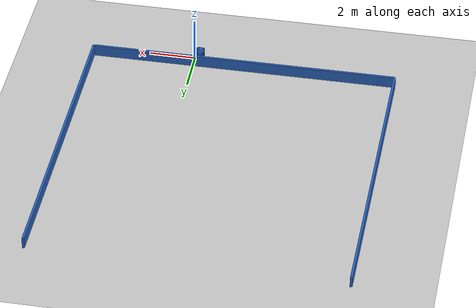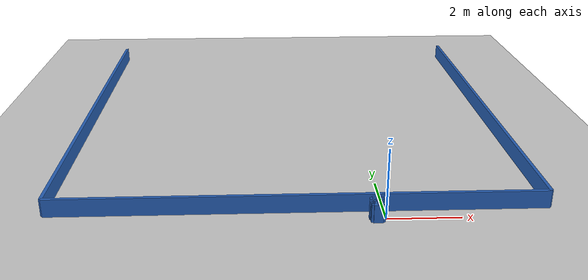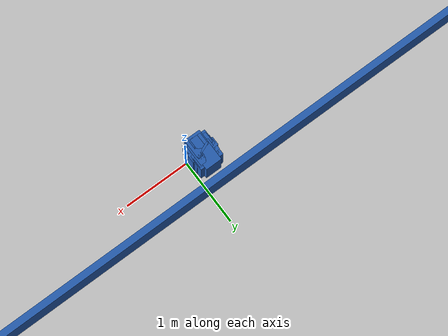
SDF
<?xml version="1.0" ?>
    <sdf version="1.5">
      <world name="default">
        <!-- A global light source -->
        <include>
          <uri>model://sun</uri>
        </include>
        <!-- A ground plane -->
        <include>
          <uri>model://ground_plane</uri>
        </include>

    <model name='libopen_space_final_T2B_123_20'>
      <static>1</static>
      <pose frame=''>-0.225000 0.075000 0.000000 0.000000 0.000000 0.000000</pose>
      <link name='link'>
        <inertial>
          <mass>1</mass>
          <inertia>
            <ixx>0.145833</ixx>
            <ixy>0</ixy>
            <ixz>0</ixz>
            <iyy>0.145833</iyy>
            <iyz>0</iyz>
            <izz>0.125</izz>
          </inertia>
        </inertial>
        <collision name='collision'>
          <geometry>
            <box>
              <size>0.42 0.13 1</size>
            </box>
          </geometry>
          <max_contacts>10</max_contacts>
          <surface>
            <contact>
              <ode/>
            </contact>
            <bounce/>
            <friction>
              <torsional>
                <ode/>
              </torsional>
              <ode/>
            </friction>
          </surface>
        </collision>
        <visual name='visual'>
          <geometry>
            <box>
              <size>0.42 0.13 1</size>
            </box>
          </geometry>
	    <material>
              <ambient>0.152000 0.379000 0.720000 1</ambient>
	      <diffuse>0.152000 0.379000 0.720000 1</diffuse>
          </material>
          <material>
            <script>
              <name>Gazebo/Grey</name>
              <uri>file://media/materials/scripts/gazebo.material</uri>
            </script>
          </material>
        </visual>
        <self_collide>0</self_collide>
        <kinematic>0</kinematic>
        <gravity>1</gravity>
      </link>
      <plugin name='libopen_space_final_T2B_123_20' filename='libopen_space_final_T2B_123_20.so'/>
    </model>

    <model name='libopen_space_final_T2B_51_63'>
      <static>1</static>
      <pose frame=''>-0.225000 0.075000 0.000000 0.000000 0.000000 0.000000</pose>
      <link name='link'>
        <inertial>
          <mass>1</mass>
          <inertia>
            <ixx>0.145833</ixx>
            <ixy>0</ixy>
            <ixz>0</ixz>
            <iyy>0.145833</iyy>
            <iyz>0</iyz>
            <izz>0.125</izz>
          </inertia>
        </inertial>
        <collision name='collision'>
          <geometry>
            <box>
              <size>0.25 0.50 1</size>
            </box>
          </geometry>
          <max_contacts>10</max_contacts>
          <surface>
            <contact>
              <ode/>
            </contact>
            <bounce/>
            <friction>
              <torsional>
                <ode/>
              </torsional>
              <ode/>
            </friction>
          </surface>
        </collision>
        <visual name='visual'>
          <geometry>
            <box>
              <size>0.25 0.50 1</size>
            </box>
          </geometry>
	    <material>
              <ambient>0.152000 0.379000 0.720000 1</ambient>
	      <diffuse>0.152000 0.379000 0.720000 1</diffuse>
          </material>
          <material>
            <script>
              <name>Gazebo/Grey</name>
              <uri>file://media/materials/scripts/gazebo.material</uri>
            </script>
          </material>
        </visual>
        <self_collide>0</self_collide>
        <kinematic>0</kinematic>
        <gravity>1</gravity>
      </link>
      <plugin name='libopen_space_final_T2B_51_63' filename='libopen_space_final_T2B_51_63.so'/>
    </model>

    <model name='libopen_space_final_T2B_83_17'>
      <static>1</static>
      <pose frame=''>-0.225000 0.075000 0.000000 0.000000 0.000000 0.000000</pose>
      <link name='link'>
        <inertial>
          <mass>1</mass>
          <inertia>
            <ixx>0.145833</ixx>
            <ixy>0</ixy>
            <ixz>0</ixz>
            <iyy>0.145833</iyy>
            <iyz>0</iyz>
            <izz>0.125</izz>
          </inertia>
        </inertial>
        <collision name='collision'>
          <geometry>
            <box>
              <size>0.35 0.35 1</size>
            </box>
          </geometry>
          <max_contacts>10</max_contacts>
          <surface>
            <contact>
              <ode/>
            </contact>
            <bounce/>
            <friction>
              <torsional>
                <ode/>
              </torsional>
              <ode/>
            </friction>
          </surface>
        </collision>
        <visual name='visual'>
          <geometry>
            <box>
              <size>0.35 0.35 1</size>
            </box>
          </geometry>
	    <material>
              <ambient>0.152000 0.379000 0.720000 1</ambient>
	      <diffuse>0.152000 0.379000 0.720000 1</diffuse>
          </material>
          <material>
            <script>
              <name>Gazebo/Grey</name>
              <uri>file://media/materials/scripts/gazebo.material</uri>
            </script>
          </material>
        </visual>
        <self_collide>0</self_collide>
        <kinematic>0</kinematic>
        <gravity>1</gravity>
      </link>
      <plugin name='libopen_space_final_T2B_83_17' filename='libopen_space_final_T2B_83_17.so'/>
    </model>

    <model name='libopen_space_final_T2B_105_8'>
      <static>1</static>
      <pose frame=''>-0.225000 0.075000 0.000000 0.000000 0.000000 0.000000</pose>
      <link name='link'>
        <inertial>
          <mass>1</mass>
          <inertia>
            <ixx>0.145833</ixx>
            <ixy>0</ixy>
            <ixz>0</ixz>
            <iyy>0.145833</iyy>
            <iyz>0</iyz>
            <izz>0.125</izz>
          </inertia>
        </inertial>
        <collision name='collision'>
          <geometry>
            <box>
              <size>0.22 0.42 1</size>
            </box>
          </geometry>
          <max_contacts>10</max_contacts>
          <surface>
            <contact>
              <ode/>
            </contact>
            <bounce/>
            <friction>
              <torsional>
                <ode/>
              </torsional>
              <ode/>
            </friction>
          </surface>
        </collision>
        <visual name='visual'>
          <geometry>
            <box>
              <size>0.22 0.42 1</size>
            </box>
          </geometry>
	    <material>
              <ambient>0.152000 0.379000 0.720000 1</ambient>
	      <diffuse>0.152000 0.379000 0.720000 1</diffuse>
          </material>
          <material>
            <script>
              <name>Gazebo/Grey</name>
              <uri>file://media/materials/scripts/gazebo.material</uri>
            </script>
          </material>
        </visual>
        <self_collide>0</self_collide>
        <kinematic>0</kinematic>
        <gravity>1</gravity>
      </link>
      <plugin name='libopen_space_final_T2B_105_8' filename='libopen_space_final_T2B_105_8.so'/>
    </model>

    <model name='libopen_space_final_T2B_129_11'>
      <static>1</static>
      <pose frame=''>-0.225000 0.075000 0.000000 0.000000 0.000000 0.000000</pose>
      <link name='link'>
        <inertial>
          <mass>1</mass>
          <inertia>
            <ixx>0.145833</ixx>
            <ixy>0</ixy>
            <ixz>0</ixz>
            <iyy>0.145833</iyy>
            <iyz>0</iyz>
            <izz>0.125</izz>
          </inertia>
        </inertial>
        <collision name='collision'>
          <geometry>
            <box>
              <size>0.24 0.49 1</size>
            </box>
          </geometry>
          <max_contacts>10</max_contacts>
          <surface>
            <contact>
              <ode/>
            </contact>
            <bounce/>
            <friction>
              <torsional>
                <ode/>
              </torsional>
              <ode/>
            </friction>
          </surface>
        </collision>
        <visual name='visual'>
          <geometry>
            <box>
              <size>0.24 0.49 1</size>
            </box>
          </geometry>
	    <material>
              <ambient>0.152000 0.379000 0.720000 1</ambient>
	      <diffuse>0.152000 0.379000 0.720000 1</diffuse>
          </material>
          <material>
            <script>
              <name>Gazebo/Grey</name>
              <uri>file://media/materials/scripts/gazebo.material</uri>
            </script>
          </material>
        </visual>
        <self_collide>0</self_collide>
        <kinematic>0</kinematic>
        <gravity>1</gravity>
      </link>
      <plugin name='libopen_space_final_T2B_129_11' filename='libopen_space_final_T2B_129_11.so'/>
    </model>

    <model name='libopen_space_final_T2B_83_61'>
      <static>1</static>
      <pose frame=''>-0.225000 0.075000 0.000000 0.000000 0.000000 0.000000</pose>
      <link name='link'>
        <inertial>
          <mass>1</mass>
          <inertia>
            <ixx>0.145833</ixx>
            <ixy>0</ixy>
            <ixz>0</ixz>
            <iyy>0.145833</iyy>
            <iyz>0</iyz>
            <izz>0.125</izz>
          </inertia>
        </inertial>
        <collision name='collision'>
          <geometry>
            <box>
              <size>0.30 0.32 1</size>
            </box>
          </geometry>
          <max_contacts>10</max_contacts>
          <surface>
            <contact>
              <ode/>
            </contact>
            <bounce/>
            <friction>
              <torsional>
                <ode/>
              </torsional>
              <ode/>
            </friction>
          </surface>
        </collision>
        <visual name='visual'>
          <geometry>
            <box>
              <size>0.30 0.32 1</size>
            </box>
          </geometry>
	    <material>
              <ambient>0.152000 0.379000 0.720000 1</ambient>
	      <diffuse>0.152000 0.379000 0.720000 1</diffuse>
          </material>
          <material>
            <script>
              <name>Gazebo/Grey</name>
              <uri>file://media/materials/scripts/gazebo.material</uri>
            </script>
          </material>
        </visual>
        <self_collide>0</self_collide>
        <kinematic>0</kinematic>
        <gravity>1</gravity>
      </link>
      <plugin name='libopen_space_final_T2B_83_61' filename='libopen_space_final_T2B_83_61.so'/>
    </model>

    <model name='libopen_space_final_T2B_126_78'>
      <static>1</static>
      <pose frame=''>-0.225000 0.075000 0.000000 0.000000 0.000000 0.000000</pose>
      <link name='link'>
        <inertial>
          <mass>1</mass>
          <inertia>
            <ixx>0.145833</ixx>
            <ixy>0</ixy>
            <ixz>0</ixz>
            <iyy>0.145833</iyy>
            <iyz>0</iyz>
            <izz>0.125</izz>
          </inertia>
        </inertial>
        <collision name='collision'>
          <geometry>
            <box>
              <size>0.16 0.43 1</size>
            </box>
          </geometry>
          <max_contacts>10</max_contacts>
          <surface>
            <contact>
              <ode/>
            </contact>
            <bounce/>
            <friction>
              <torsional>
                <ode/>
              </torsional>
              <ode/>
            </friction>
          </surface>
        </collision>
        <visual name='visual'>
          <geometry>
            <box>
              <size>0.16 0.43 1</size>
            </box>
          </geometry>
	    <material>
              <ambient>0.152000 0.379000 0.720000 1</ambient>
	      <diffuse>0.152000 0.379000 0.720000 1</diffuse>
          </material>
          <material>
            <script>
              <name>Gazebo/Grey</name>
              <uri>file://media/materials/scripts/gazebo.material</uri>
            </script>
          </material>
        </visual>
        <self_collide>0</self_collide>
        <kinematic>0</kinematic>
        <gravity>1</gravity>
      </link>
      <plugin name='libopen_space_final_T2B_126_78' filename='libopen_space_final_T2B_126_78.so'/>
    </model>

    <model name='libopen_space_final_T2B_73_9'>
      <static>1</static>
      <pose frame=''>-0.225000 0.075000 0.000000 0.000000 0.000000 0.000000</pose>
      <link name='link'>
        <inertial>
          <mass>1</mass>
          <inertia>
            <ixx>0.145833</ixx>
            <ixy>0</ixy>
            <ixz>0</ixz>
            <iyy>0.145833</iyy>
            <iyz>0</iyz>
            <izz>0.125</izz>
          </inertia>
        </inertial>
        <collision name='collision'>
          <geometry>
            <box>
              <size>0.23 0.11 1</size>
            </box>
          </geometry>
          <max_contacts>10</max_contacts>
          <surface>
            <contact>
              <ode/>
            </contact>
            <bounce/>
            <friction>
              <torsional>
                <ode/>
              </torsional>
              <ode/>
            </friction>
          </surface>
        </collision>
        <visual name='visual'>
          <geometry>
            <box>
              <size>0.23 0.11 1</size>
            </box>
          </geometry>
	    <material>
              <ambient>0.152000 0.379000 0.720000 1</ambient>
	      <diffuse>0.152000 0.379000 0.720000 1</diffuse>
          </material>
          <material>
            <script>
              <name>Gazebo/Grey</name>
              <uri>file://media/materials/scripts/gazebo.material</uri>
            </script>
          </material>
        </visual>
        <self_collide>0</self_collide>
        <kinematic>0</kinematic>
        <gravity>1</gravity>
      </link>
      <plugin name='libopen_space_final_T2B_73_9' filename='libopen_space_final_T2B_73_9.so'/>
    </model>

    <model name='libopen_space_final_T2B_145_37'>
      <static>1</static>
      <pose frame=''>-0.225000 0.075000 0.000000 0.000000 0.000000 0.000000</pose>
      <link name='link'>
        <inertial>
          <mass>1</mass>
          <inertia>
            <ixx>0.145833</ixx>
            <ixy>0</ixy>
            <ixz>0</ixz>
            <iyy>0.145833</iyy>
            <iyz>0</iyz>
            <izz>0.125</izz>
          </inertia>
        </inertial>
        <collision name='collision'>
          <geometry>
            <box>
              <size>0.17 0.40 1</size>
            </box>
          </geometry>
          <max_contacts>10</max_contacts>
          <surface>
            <contact>
              <ode/>
            </contact>
            <bounce/>
            <friction>
              <torsional>
                <ode/>
              </torsional>
              <ode/>
            </friction>
          </surface>
        </collision>
        <visual name='visual'>
          <geometry>
            <box>
              <size>0.17 0.40 1</size>
            </box>
          </geometry>
	    <material>
              <ambient>0.152000 0.379000 0.720000 1</ambient>
	      <diffuse>0.152000 0.379000 0.720000 1</diffuse>
          </material>
          <material>
            <script>
              <name>Gazebo/Grey</name>
              <uri>file://media/materials/scripts/gazebo.material</uri>
            </script>
          </material>
        </visual>
        <self_collide>0</self_collide>
        <kinematic>0</kinematic>
        <gravity>1</gravity>
      </link>
      <plugin name='libopen_space_final_T2B_145_37' filename='libopen_space_final_T2B_145_37.so'/>
    </model>

    <model name='libopen_space_final_T2B_115_16'>
      <static>1</static>
      <pose frame=''>-0.225000 0.075000 0.000000 0.000000 0.000000 0.000000</pose>
      <link name='link'>
        <inertial>
          <mass>1</mass>
          <inertia>
            <ixx>0.145833</ixx>
            <ixy>0</ixy>
            <ixz>0</ixz>
            <iyy>0.145833</iyy>
            <iyz>0</iyz>
            <izz>0.125</izz>
          </inertia>
        </inertial>
        <collision name='collision'>
          <geometry>
            <box>
              <size>0.12 0.42 1</size>
            </box>
          </geometry>
          <max_contacts>10</max_contacts>
          <surface>
            <contact>
              <ode/>
            </contact>
            <bounce/>
            <friction>
              <torsional>
                <ode/>
              </torsional>
              <ode/>
            </friction>
          </surface>
        </collision>
        <visual name='visual'>
          <geometry>
            <box>
              <size>0.12 0.42 1</size>
            </box>
          </geometry>
	    <material>
              <ambient>0.152000 0.379000 0.720000 1</ambient>
	      <diffuse>0.152000 0.379000 0.720000 1</diffuse>
          </material>
          <material>
            <script>
              <name>Gazebo/Grey</name>
              <uri>file://media/materials/scripts/gazebo.material</uri>
            </script>
          </material>
        </visual>
        <self_collide>0</self_collide>
        <kinematic>0</kinematic>
        <gravity>1</gravity>
      </link>
      <plugin name='libopen_space_final_T2B_115_16' filename='libopen_space_final_T2B_115_16.so'/>
    </model>

    <model name='libopen_space_final_T2B_96_80'>
      <static>1</static>
      <pose frame=''>-0.225000 0.075000 0.000000 0.000000 0.000000 0.000000</pose>
      <link name='link'>
        <inertial>
          <mass>1</mass>
          <inertia>
            <ixx>0.145833</ixx>
            <ixy>0</ixy>
            <ixz>0</ixz>
            <iyy>0.145833</iyy>
            <iyz>0</iyz>
            <izz>0.125</izz>
          </inertia>
        </inertial>
        <collision name='collision'>
          <geometry>
            <box>
              <size>0.37 0.42 1</size>
            </box>
          </geometry>
          <max_contacts>10</max_contacts>
          <surface>
            <contact>
              <ode/>
            </contact>
            <bounce/>
            <friction>
              <torsional>
                <ode/>
              </torsional>
              <ode/>
            </friction>
          </surface>
        </collision>
        <visual name='visual'>
          <geometry>
            <box>
              <size>0.37 0.42 1</size>
            </box>
          </geometry>
	    <material>
              <ambient>0.152000 0.379000 0.720000 1</ambient>
	      <diffuse>0.152000 0.379000 0.720000 1</diffuse>
          </material>
          <material>
            <script>
              <name>Gazebo/Grey</name>
              <uri>file://media/materials/scripts/gazebo.material</uri>
            </script>
          </material>
        </visual>
        <self_collide>0</self_collide>
        <kinematic>0</kinematic>
        <gravity>1</gravity>
      </link>
      <plugin name='libopen_space_final_T2B_96_80' filename='libopen_space_final_T2B_96_80.so'/>
    </model>

    <model name='libopen_space_final_T2B_83_23'>
      <static>1</static>
      <pose frame=''>-0.225000 0.075000 0.000000 0.000000 0.000000 0.000000</pose>
      <link name='link'>
        <inertial>
          <mass>1</mass>
          <inertia>
            <ixx>0.145833</ixx>
            <ixy>0</ixy>
            <ixz>0</ixz>
            <iyy>0.145833</iyy>
            <iyz>0</iyz>
            <izz>0.125</izz>
          </inertia>
        </inertial>
        <collision name='collision'>
          <geometry>
            <box>
              <size>0.38 0.25 1</size>
            </box>
          </geometry>
          <max_contacts>10</max_contacts>
          <surface>
            <contact>
              <ode/>
            </contact>
            <bounce/>
            <friction>
              <torsional>
                <ode/>
              </torsional>
              <ode/>
            </friction>
          </surface>
        </collision>
        <visual name='visual'>
          <geometry>
            <box>
              <size>0.38 0.25 1</size>
            </box>
          </geometry>
	    <material>
              <ambient>0.152000 0.379000 0.720000 1</ambient>
	      <diffuse>0.152000 0.379000 0.720000 1</diffuse>
          </material>
          <material>
            <script>
              <name>Gazebo/Grey</name>
              <uri>file://media/materials/scripts/gazebo.material</uri>
            </script>
          </material>
        </visual>
        <self_collide>0</self_collide>
        <kinematic>0</kinematic>
        <gravity>1</gravity>
      </link>
      <plugin name='libopen_space_final_T2B_83_23' filename='libopen_space_final_T2B_83_23.so'/>
    </model>

        <model name='bottom_wall'>
          <static>1</static>
          <pose frame=''>-2.25 0.5 0.000000 0.000000 0.000000 1.57079632</pose>
          <link name='link'>
            <inertial>
            <mass>1</mass>
            <inertia>
              <ixx>0.145833</ixx>
              <ixy>0</ixy>
              <ixz>0</ixz>
              <iyy>0.145833</iyy>
              <iyz>0</iyz>
              <izz>0.125</izz>
            </inertia>
            </inertial>
            <collision name='collision'>
            <geometry>
              <box>
              <size>0.1 13.5 1</size>
              </box>
            </geometry>
            <max_contacts>10</max_contacts>
            <surface>
              <contact>
              <ode/>
              </contact>
              <bounce/>
              <friction>
              <torsional>
                <ode/>
              </torsional>
              <ode/>
              </friction>
            </surface>
            </collision>
            <visual name='visual'>
            <geometry>
              <box>
              <size>0.1 13.5 1</size>
              </box>
            </geometry>
            <material>
              <ambient>0.152000 0.379000 0.720000 1</ambient>
            <diffuse>0.152000 0.379000 0.720000 1</diffuse>
            </material>
            <material>
              <script>
              <name>Gazebo/Grey</name>
              <uri>file://media/materials/scripts/gazebo.material</uri>
              </script>
            </material>
            </visual>
            <self_collide>0</self_collide>
            <kinematic>0</kinematic>
            <gravity>1</gravity>
          </link>
        </model>

        <model name='left_wall'>
          <static>1</static>
          <pose frame=''>-9 7.25 0.000000 0.000000 0.000000 0.000000</pose>
          <link name='link'>
            <inertial>
            <mass>1</mass>
            <inertia>
              <ixx>0.145833</ixx>
              <ixy>0</ixy>
              <ixz>0</ixz>
              <iyy>0.145833</iyy>
              <iyz>0</iyz>
              <izz>0.125</izz>
            </inertia>
            </inertial>
            <collision name='collision'>
            <geometry>
              <box>
              <size>0.1 13.5 1</size>
              </box>
            </geometry>
            <max_contacts>10</max_contacts>
            <surface>
              <contact>
              <ode/>
              </contact>
              <bounce/>
              <friction>
              <torsional>
                <ode/>
              </torsional>
              <ode/>
              </friction>
            </surface>
            </collision>
            <visual name='visual'>
            <geometry>
              <box>
              <size>0.1 13.5 1</size>
              </box>
            </geometry>
            <material>
              <ambient>0.152000 0.379000 0.720000 1</ambient>
            <diffuse>0.152000 0.379000 0.720000 1</diffuse>
            </material>
            <material>
              <script>
              <name>Gazebo/Grey</name>
              <uri>file://media/materials/scripts/gazebo.material</uri>
              </script>
            </material>
            </visual>
            <self_collide>0</self_collide>
            <kinematic>0</kinematic>
            <gravity>1</gravity>
          </link>
        </model>

        <model name='right_wall'>
          <static>1</static>
          <pose frame=''>4.5 7.25 0.000000 0.000000 0.000000 0.000000</pose>
          <link name='link'>
            <inertial>
            <mass>1</mass>
            <inertia>
              <ixx>0.145833</ixx>
              <ixy>0</ixy>
              <ixz>0</ixz>
              <iyy>0.145833</iyy>
              <iyz>0</iyz>
              <izz>0.125</izz>
            </inertia>
            </inertial>
            <collision name='collision'>
            <geometry>
              <box>
              <size>0.1 13.5 1</size>
              </box>
            </geometry>
            <max_contacts>10</max_contacts>
            <surface>
              <contact>
              <ode/>
              </contact>
              <bounce/>
              <friction>
              <torsional>
                <ode/>
              </torsional>
              <ode/>
              </friction>
            </surface>
            </collision>
            <visual name='visual'>
            <geometry>
              <box>
              <size>0.1 13.5 1</size>
              </box>
            </geometry>
            <material>
              <ambient>0.152000 0.379000 0.720000 1</ambient>
            <diffuse>0.152000 0.379000 0.720000 1</diffuse>
            </material>
            <material>
              <script>
              <name>Gazebo/Grey</name>
              <uri>file://media/materials/scripts/gazebo.material</uri>
              </script>
            </material>
            </visual>
            <self_collide>0</self_collide>
            <kinematic>0</kinematic>
            <gravity>1</gravity>
          </link>
        </model>

      </world>
    </sdf>"
